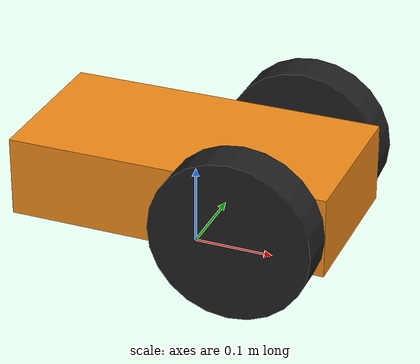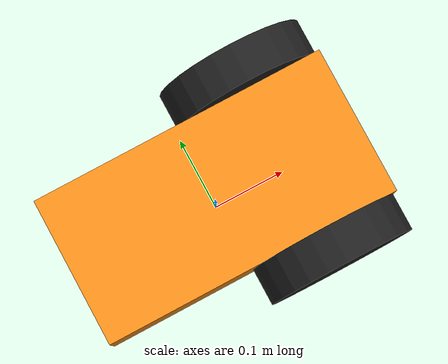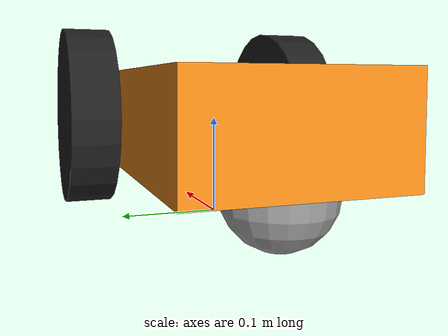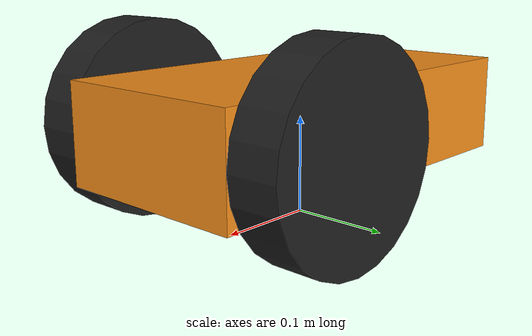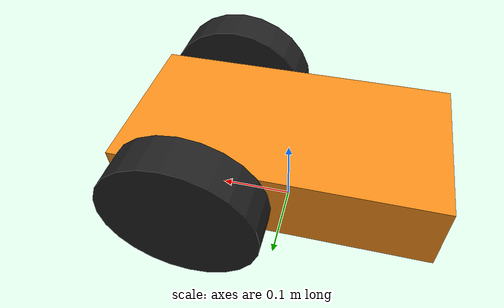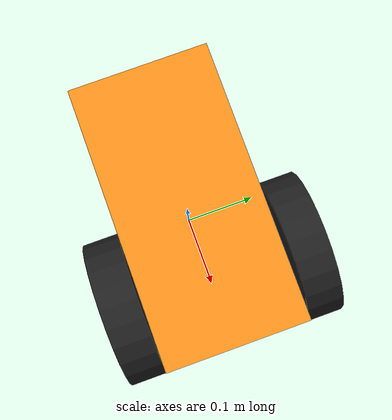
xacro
<?xml version="1.0"?>

<robot name="mobile_robot" xmlns:xacro="http://www.ros.org/wiki/xacro">

  <xacro:property name="PI" value="3.1415926535897931"/>

  <xacro:property name="chassisHeight" value="0.1"/>
  <xacro:property name="chassisLength" value="0.4"/>
  <xacro:property name="chassisWidth" value="0.2"/>
  <xacro:property name="chassisMass" value="50"/>

  <xacro:property name="casterRadius" value="0.05"/>
  <xacro:property name="casterMass" value="5"/>

  <xacro:property name="wheelWidth" value="0.05"/>
  <xacro:property name="wheelRadius" value="0.1"/>
  <xacro:property name="wheelPos" value="0.2"/>
  <xacro:property name="wheelMass" value="5"/>

  <xacro:property name="cameraSize" value="0.05"/>
  <xacro:property name="cameraMass" value="0.1"/>

  <xacro:include filename="$(find mobile_robot_description)/urdf/materials.xacro" />
  <xacro:include filename="$(find mobile_robot_description)/urdf/macros.xacro" />

  <link name="footprint" />

  <joint name="base_joint" type="fixed">
    <parent link="footprint"/>
    <child link="chassis"/>
  </joint>

  <link name="chassis">
    <collision>
      <origin xyz="0 0 ${wheelRadius}" rpy="0 0 0"/>
      <geometry>
	<box size="${chassisLength} ${chassisWidth} ${chassisHeight}"/>
      </geometry>
    </collision>
    <visual>
      <origin xyz="0 0 ${wheelRadius}" rpy="0 0 0"/>
      <geometry>
	<box size="${chassisLength} ${chassisWidth} ${chassisHeight}"/>
      </geometry>
      <material name="orange"/>
    </visual>
    <inertial>
      <origin xyz="0 0 ${wheelRadius}" rpy="0 0 0"/>
      <mass value="${chassisMass}"/>
      <box_inertia m="${chassisMass}" x="${chassisLength}" y="${chassisWidth}" z="${chassisHeight}"/>
    </inertial>
  </link>

  <joint name="fixed" type="fixed">
    <parent link="chassis"/>
    <child link="caster_wheel"/>
  </joint>

  <link name="caster_wheel">

    <collision>
      <origin xyz="${casterRadius-chassisLength/2} 0 ${casterRadius-chassisHeight+wheelRadius}" rpy="0 0 0"/>
      <geometry>
	<sphere radius="${casterRadius}"/>
      </geometry>
    </collision>

    <visual>
      <origin xyz="${casterRadius-chassisLength/2} 0 ${casterRadius-chassisHeight+wheelRadius}" rpy="0 0 0"/>
      <geometry>
	<sphere radius="${casterRadius}"/>
      </geometry>
    </visual>

    <inertial>
      <origin xyz="${casterRadius-chassisLength/2} 0 ${casterRadius-chassisHeight+wheelRadius}" rpy="0 0 0"/>
      <mass value="${casterMass}"/>
      <sphere_inertia m="${casterMass}" r="${casterRadius}"/>
    </inertial>
  </link>

  <wheel lr="left" tY="1"/>
  <wheel lr="right" tY="-1"/>

  	<link name="SonarFront_frame">
        </link>
	<joint name="Sonar/Front_sensor_fixedjoint" type="fixed">
		<parent link="chassis"/>
		<child link="SonarFront_frame"/>
		<origin rpy="0 0.0 0" xyz="0.2 0 0.1"/>
	</joint>

  	<link name="SonarLeftFront_frame">
        </link>
	<joint name="Sonar/LeftFront_sensor_fixedjoint" type="fixed">
		<parent link="chassis"/>
		<child link="SonarLeftFront_frame"/>
		<origin rpy="0 0.0 1.57" xyz="-0.02 0.1 0.1"/>
	</joint>

  	<link name="SonarLeftBack_frame">
        </link>
	<joint name="Sonar/LeftBack_sensor_fixedjoint" type="fixed">
		<parent link="chassis"/>
		<child link="SonarLeftBack_frame"/>
		<origin rpy="0 0.0 1.57" xyz="-0.2 0.1 0.1"/>
	</joint>

  	<link name="SonarRightFront_frame">
        </link>
	<joint name="Sonar/RightFront_sensor_fixedjoint" type="fixed">
		<parent link="chassis"/>
		<child link="SonarRightFront_frame"/>
		<origin rpy="0 0.0 -1.57" xyz="-0.02 -0.1 0.1"/>
	</joint>
  	<link name="SonarRightBack_frame">
        </link>
	<joint name="Sonar/RightBack_sensor_fixedjoint" type="fixed">
		<parent link="chassis"/>
		<child link="SonarRightBack_frame"/>
		<origin rpy="0 0.0 -1.57" xyz="-0.2 -0.1 0.1"/>
	</joint>

    <joint name="imu_joint" type="fixed">
        <origin xyz="0 0 0"/>
        <parent link="chassis"/>
        <child link="imu_link"/>
    </joint>

    <link name="imu_link">
    </link>

    <xacro:include filename="$(find mobile_robot_description)/urdf/mobile_robot.gazebo" />

</robot>

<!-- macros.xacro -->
<robot>
     <macro name="cylinder_inertia" params="m r h">
        <inertia  ixx="${m*(3*r*r+h*h)/12}" ixy = "0" ixz = "0"
                  iyy="${m*(3*r*r+h*h)/12}" iyz = "0"
                  izz="${m*r*r/2}" />
      </macro>

      <macro name="box_inertia" params="m x y z">
        <inertia  ixx="${m*(y*y+z*z)/12}" ixy = "0" ixz = "0"
                  iyy="${m*(x*x+z*z)/12}" iyz = "0"
                  izz="${m*(x*x+z*z)/12}" />
      </macro>

      <macro name="sphere_inertia" params="m r">
        <inertia  ixx="${2*m*r*r/5}" ixy = "0" ixz = "0"
                  iyy="${2*m*r*r/5}" iyz = "0"
                  izz="${2*m*r*r/5}" />
      </macro>

     <macro name="wheel" params="lr tY">

       <link name="${lr}_wheel">
        <collision>
          <origin xyz="0 0 0" rpy="0 ${PI/2} ${PI/2}" />
          <geometry>
           <cylinder length="${wheelWidth}" radius="${wheelRadius}"/>
          </geometry>
        </collision>

        <visual>
          <origin xyz="0 0 0" rpy="0 ${PI/2} ${PI/2}" />
          <geometry>
           <cylinder length="${wheelWidth}" radius="${wheelRadius}"/>
          </geometry>
          <material name="black"/>
        </visual>

        <inertial>
          <origin xyz="0 0 0" rpy="0 ${PI/2} ${PI/2}" />
          <mass value="${wheelMass}"/>
          <cylinder_inertia m="${wheelMass}" r="${wheelRadius}" h="${wheelWidth}"/>
        </inertial>
       </link>

        <gazebo reference="${lr}_wheel">
          <material>Gazebo/Black</material>
            <mu1>1.0</mu1>
            <mu2>1.0</mu2>
            <kp>1000000.0</kp>
            <kd>100.0</kd>
            <minDepth>0.001</minDepth>
            <maxVel>1.0</maxVel>
        </gazebo>

       <joint name="${lr}_wheel_hinge" type="continuous">
          <parent link="chassis"/>
          <child link="${lr}_wheel"/>
          <origin xyz="${+wheelPos-chassisLength/4} ${tY*wheelWidth/2+tY*chassisWidth/2} ${wheelRadius}" rpy="0 0 0" />
          <axis xyz="0 1 0" rpy="0 0 0" />
          <limit effort="100" velocity="100"/>
          <joint_properties damping="0.0" friction="0.0"/>
        </joint>

      <transmission name="${lr}_trans">
        <type>transmission_interface/SimpleTransmission</type>
        <joint name="${lr}_wheel_hinge">
            <hardwareInterface>EffortJointInterface</hardwareInterface>
        </joint>
        <actuator name="${lr}Motor">
          <hardwareInterface>EffortJointInterface</hardwareInterface>
          <mechanicalReduction>10</mechanicalReduction>
        </actuator>
      </transmission>

     </macro>
</robot>
